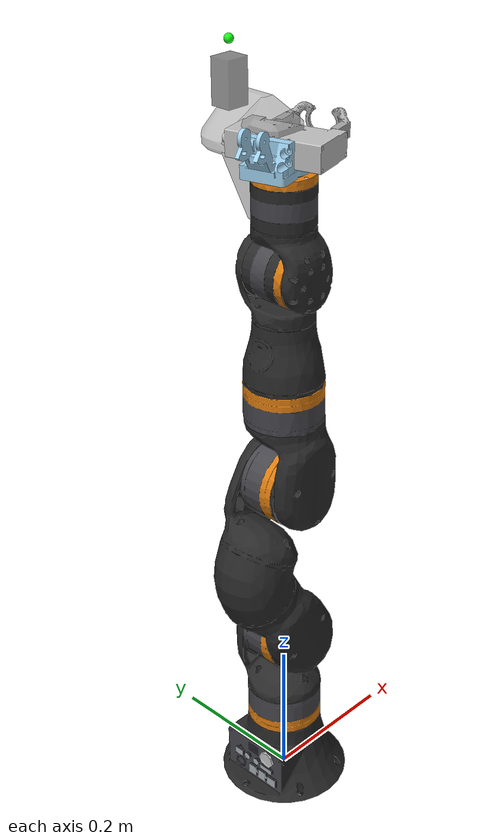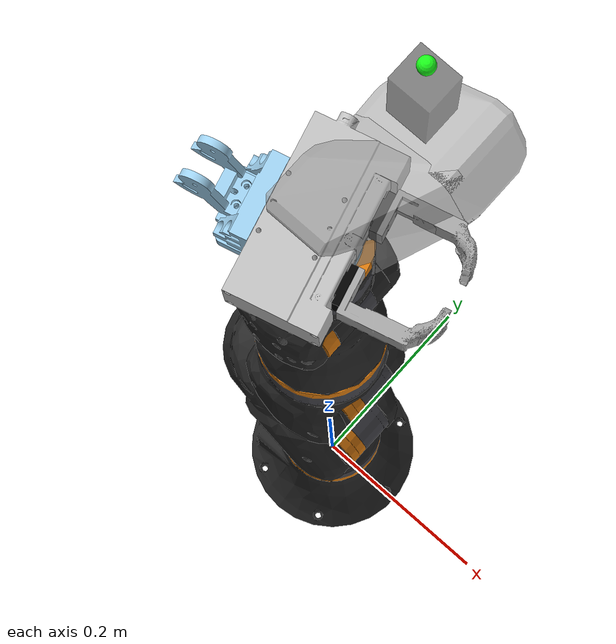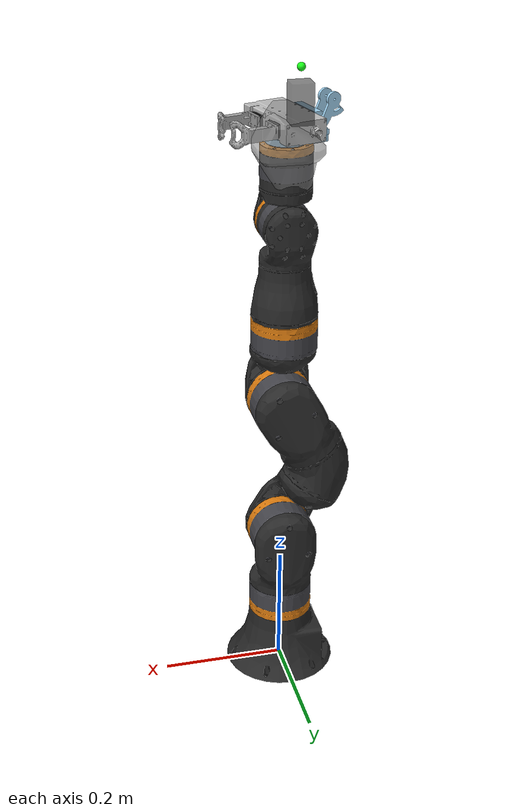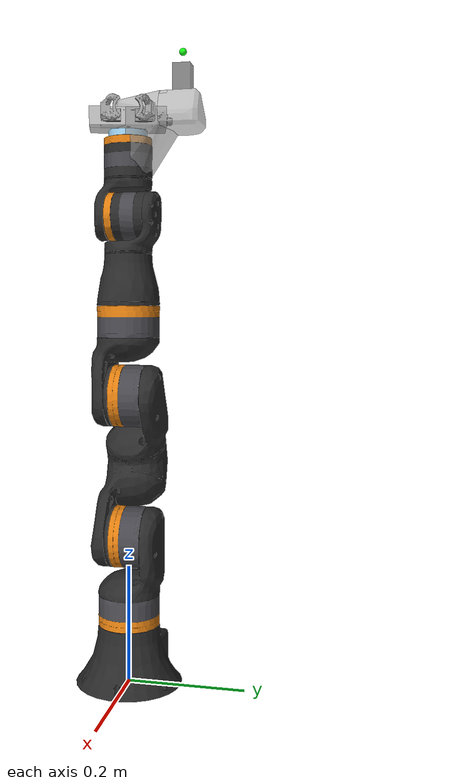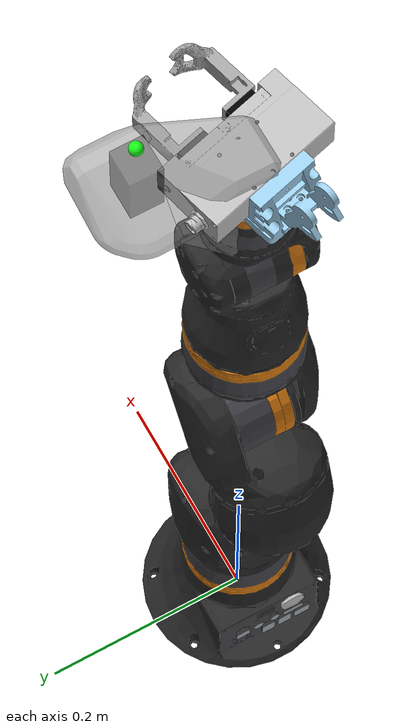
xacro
<?xml version="1.0"?>
<robot xmlns:xacro="http://www.ros.org/wiki/xacro" name="igus_rebel_with_xeg32">
    <xacro:arg name="initial_positions_file" default="initial_positions.yaml" />

    <!-- Import igus_rebel_with_xeg32 urdf file -->
    <xacro:include filename="$(find igus_rebel_description)/urdf/igus_rebel_xeg32_wrapper.urdf.xacro" />

    <!-- Import control_xacro -->
    <xacro:include filename="igus_rebel_with_xeg32.ros2_control.xacro" />

    <xacro:igus_rebel_with_xeg32_ros2_control name="FakeSystem" initial_positions_file="$(arg initial_positions_file)"/>

</robot>

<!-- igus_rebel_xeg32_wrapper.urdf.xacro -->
<robot xmlns:xacro="http://www.ros.org/wiki/xacro"
       name="igus_rebel_with_xeg32">

  <!-- Keep the ReBeL arm hardware configuration independent from the gripper. -->
  <xacro:arg name="hardware_protocol" default="rebel"/>
  <!-- CRI controller address: 192.168.3.11 = wired LAN (default), 192.168.50.133 = Wi-Fi. -->
  <xacro:arg name="robot_ip" default="192.168.3.11"/>
  <!-- CRI MoveJoint velocity cap [%] (driver default 25, hard cap 100); raise only for supervised tests. -->
  <xacro:arg name="move_joint_max_velocity_percent" default="25"/>
  <xacro:arg name="jog_velocity_scale" default="1.65"/>
  <xacro:arg name="cart_jog_percent_per_mps" default="200.0"/>
  <xacro:arg name="cart_jog_percent_per_radps" default="100.0"/>
  <xacro:arg name="cart_jog_max_percent" default="10.0"/>
  <xacro:arg name="cart_jog_allow_rotation" default="false"/>
  <xacro:arg name="cart_jog_signs" default="1,1,1,1,1,1"/>
  <xacro:arg name="cart_jog_timeout_s" default="0.15"/>
  <xacro:arg name="cart_jog_idle_exit_s" default="10.0"/>
  <xacro:arg name="cart_jog_base_frame" default="base_link"/>
  <!-- Direct joint jog (CRI route, robot stays in MotionTypeJoint); entered by the ~/joint_jog_enable service. -->
  <xacro:arg name="joint_jog_max_percent" default="10.0"/>
  <xacro:arg name="joint_jog_timeout_s" default="0.15"/>
  <xacro:arg name="joint_jog_idle_exit_s" default="10.0"/>
  <!-- CRI TCP port of the controller (3920); only changed for the loopback fake robot. -->
  <xacro:arg name="robot_port" default="3920"/>
  <xacro:arg name="include_ros2_control" default="true"/>
  <xacro:arg name="attach_xeg32" default="true"/>

  <!-- Retained rough gripper mount; not used to define the calibrated TCP. -->
  <xacro:arg name="xeg32_mount_xyz" default="0 0 0.052"/>
  <xacro:arg name="xeg32_mount_rpy" default="0 0 0.261799"/>

  <xacro:include filename="$(find igus_rebel_description)/urdf/igus_rebel2.urdf"/>
  <xacro:include filename="$(find igus_rebel_description)/urdf/igus_rebel2.control.xacro"/>
  <xacro:include filename="$(find igus_rebel_description)/urdf/xeg32_gripper.urdf.xacro"/>

  <xacro:if value="$(arg include_ros2_control)">
    <xacro:igus_rebel_control
      arm_id="rebel_arm"
      hardware_protocol="$(arg hardware_protocol)"
      robot_ip="$(arg robot_ip)"
      robot_port="$(arg robot_port)"
      jog_velocity_scale="$(arg jog_velocity_scale)"
      cart_jog_percent_per_mps="$(arg cart_jog_percent_per_mps)"
      cart_jog_percent_per_radps="$(arg cart_jog_percent_per_radps)"
      cart_jog_max_percent="$(arg cart_jog_max_percent)"
      cart_jog_allow_rotation="$(arg cart_jog_allow_rotation)"
      cart_jog_signs="$(arg cart_jog_signs)"
      cart_jog_timeout_s="$(arg cart_jog_timeout_s)"
      cart_jog_idle_exit_s="$(arg cart_jog_idle_exit_s)"
      cart_jog_base_frame="$(arg cart_jog_base_frame)"
      joint_jog_max_percent="$(arg joint_jog_max_percent)"
      joint_jog_timeout_s="$(arg joint_jog_timeout_s)"
      joint_jog_idle_exit_s="$(arg joint_jog_idle_exit_s)"
      move_joint_max_velocity_percent="$(arg move_joint_max_velocity_percent)"/>
  </xacro:if>

  <!-- Same world attachment used by igus_rebel_robot2.urdf.xacro. -->
  <link name="world"/>
  <joint name="world_joint" type="fixed">
    <parent link="world"/>
    <child link="base_link"/>
    <origin xyz="0 0 0" rpy="0 0 0"/>
  </joint>

  <xacro:if value="$(arg attach_xeg32)">
    <xacro:xeg32_gripper
      parent_link="link6"
      prefix="xeg32_"
      flange_xyz="$(arg xeg32_mount_xyz)"
      flange_rpy="$(arg xeg32_mount_rpy)"/>
  </xacro:if>
  <!-- Calibrated frames remain available even when gripper visuals are omitted. -->
  <link name="igus_tool0"/>
  <joint name="link6_to_igus_tool0" type="fixed">
    <parent link="link6"/>
    <child link="igus_tool0"/>
    <origin xyz="0 0 0.0527" rpy="0 0 3.141592653589793"/>
  </joint>
  <link name="xeg32_tool_tip">
    <visual>
      <geometry><sphere radius="0.006"/></geometry>
      <material name="xeg32_tool_tip_marker"><color rgba="0.1 1 0.1 1"/></material>
    </visual>
  </link>
  <!-- touch-corrected 2026-09-24c: XY-only safety fix (tip -0.7/+4.6mm tool from CENTER residual); Z held at +15mm fix (0.130699) pending stale-model check -->
  <joint name="igus_tool0_to_xeg32_tool_tip" type="fixed">
    <parent link="igus_tool0"/>
    <child link="xeg32_tool_tip"/>
    <origin xyz="0.005937 0.094121 0.130699" rpy="0 0 0"/>
  </joint>

  <xacro:if value="$(arg attach_xeg32)">
    <link name="xeg32_knife_handpiece">
      <visual>
        <geometry><mesh filename="package://igus_rebel_description/meshes/xeg32_collision/knife_handpiece.stl"/></geometry>
        <material name="xeg32_knife_handpiece_material"><color rgba="0.2 0.2 0.2 0.6"/></material>
      </visual>
      <collision>
        <geometry><mesh filename="package://igus_rebel_description/meshes/xeg32_collision/knife_handpiece.stl"/></geometry>
      </collision>
    </link>
    <joint name="igus_tool0_to_xeg32_knife_handpiece" type="fixed">
      <parent link="igus_tool0"/>
      <child link="xeg32_knife_handpiece"/>
      <origin xyz="0 0 0" rpy="0 0 0"/>
    </joint>

    <link name="xeg32_knife_holder">
      <visual>
        <geometry><mesh filename="package://igus_rebel_description/meshes/xeg32_collision/knife_holder_ring.stl"/></geometry>
        <material name="xeg32_knife_holder_material"><color rgba="0.6 0.6 0.6 0.6"/></material>
      </visual>
      <collision>
        <geometry><mesh filename="package://igus_rebel_description/meshes/xeg32_collision/knife_holder_ring.stl"/></geometry>
      </collision>
      <visual>
        <geometry><mesh filename="package://igus_rebel_description/meshes/xeg32_collision/knife_holder_body.stl"/></geometry>
        <material name="xeg32_knife_holder_material"/>
      </visual>
      <collision>
        <geometry><mesh filename="package://igus_rebel_description/meshes/xeg32_collision/knife_holder_body.stl"/></geometry>
      </collision>
    </link>
    <joint name="igus_tool0_to_xeg32_knife_holder" type="fixed">
      <parent link="igus_tool0"/>
      <child link="xeg32_knife_holder"/>
      <origin xyz="0 0 0" rpy="0 0 0"/>
    </joint>
    <!-- Wrist camera removed 2026-09-28: it protruded past the blade tip along the knife
         axis and hit the carton; it is uninstalled until the combined knife/camera holder
         is redesigned. -->
  </xacro:if>
</robot>

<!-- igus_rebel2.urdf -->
<robot
  name="igus_rebel">
  <link
    name="base_link">
    <inertial>
      <origin
        xyz="-0.0011101 -0.00059494 0.040917"
        rpy="0 0 0" />
      <mass
        value="4.2944" />
      <inertia
        ixx="0.098117"
        ixy="4.4465E-07"
        ixz="3.3605E-05"
        iyy="0.086593"
        iyz="-1.8837E-06"
        izz="0.12838" />
    </inertial>
    <visual>
      <origin
        xyz="0 0 0"
        rpy="0 0 0" />
      <geometry>
        <mesh
          filename="package://igus_rebel_description/meshes/rebel_d00617809/base_link.dae" />
      </geometry>
    </visual>
    <collision>
      <origin
        xyz="0 0 0.05"
        rpy="0 0 0" />
      <geometry>
        <cylinder radius="0.09" length="0.1"/>
      </geometry>
    </collision>
  </link>
  <link
    name="motor1">
    <inertial>
      <origin
        xyz="0.00015243 0.00010812 -0.014668"
        rpy="0 0 0" />
      <mass
        value="2" />
      <inertia
        ixx="0.024041"
        ixy="8.3398E-08"
        ixz="-7.2533E-07"
        iyy="0.024081"
        iyz="-6.2967E-07"
        izz="0.037427" />
    </inertial>
    <visual>
      <origin
        xyz="0 0 0"
        rpy="0 0 0" />
      <geometry>
        <mesh
          filename="package://igus_rebel_description/meshes/rebel_d00617809/motor1.dae" />
      </geometry>
    </visual>
    <collision>
      <origin
        xyz="0 0 -0.0125"
        rpy="0 0 0" />
      <geometry>
        <cylinder radius="0.05" length="0.065"/>
      </geometry>
    </collision>
  </link>
  <joint
    name="J_motor1"
    type="fixed">
    <origin
      xyz="0 0 0.1462"
      rpy="0 0 3.1416" />
    <parent
      link="base_link" />
    <child
      link="motor1" />
    <axis
      xyz="0 0 0" />
  </joint>
  <link
    name="link1">
    <inertial>
      <origin
        xyz="2.5064E-06 -0.031151 0.06301"
        rpy="0 0 0" />
      <mass
        value="1.9246" />
      <inertia
        ixx="0.046865"
        ixy="-3.7969E-09"
        ixz="5.1665E-09"
        iyy="0.04904"
        iyz="0.00010721"
        izz="0.030611" />
    </inertial>
    <visual>
      <origin
        xyz="0 0 0"
        rpy="0 0 0" />
      <geometry>
        <mesh
          filename="package://igus_rebel_description/meshes/rebel_d00617809/link1.dae" />
      </geometry>
    </visual>
    <collision>
      <origin
        xyz="0 -0.045 0.08"
        rpy="0 0 0" />
      <geometry>
        <box size="0.1 0.03 0.1"/>
      </geometry>
    </collision>
  </link>
  <joint
    name="joint1"
    type="revolute">
    <origin
      xyz="0 0 0"
      rpy="0 0 0" />
    <parent
      link="motor1" />
    <child
      link="link1" />
    <axis
      xyz="0 0 1" />
    <limit
      lower="-3.106686"
      upper="3.106686"
      effort="330"
      velocity="0.785" />
    <dynamics
      damping="0.0"
      friction="0.0" />
  </joint>
  <link
    name="motor2">
    <inertial>
      <origin
        xyz="0.00015243 0.014668 0.00010812"
        rpy="0 0 0" />
      <mass
        value="2" />
      <inertia
        ixx="0.024041"
        ixy="7.2533E-07"
        ixz="8.3398E-08"
        iyy="0.037427"
        iyz="6.2967E-07"
        izz="0.024081" />
    </inertial>
    <visual>
      <origin
        xyz="0 0 0"
        rpy="0 0 0" />
      <geometry>
        <mesh
          filename="package://igus_rebel_description/meshes/rebel_d00617809/motor2.dae" />
      </geometry>
    </visual>
    <collision>
      <origin
        xyz="0 0.0125 0"
        rpy="1.57079 0 0" />
      <geometry>
        <cylinder radius="0.05" length="0.065"/>
      </geometry>
    </collision>
  </link>
  <joint
    name="J_motor2"
    type="fixed">
    <origin
      xyz="0 -0.0225000000000001 0.106"
      rpy="0 0 0" />
    <parent
      link="link1" />
    <child
      link="motor2" />
    <axis
      xyz="0 0 0" />
  </joint>
  <link
    name="link2">
    <inertial>
      <origin
        xyz="0.023424 0.025337 0.10782"
        rpy="0 0 0" />
      <mass
        value="5.689" />
      <inertia
        ixx="0.1162"
        ixy="-2.0164E-11"
        ixz="-0.00018569"
        iyy="0.10155"
        iyz="5.9595E-10"
        izz="0.08965" />
    </inertial>
    <visual>
      <origin
        xyz="0 0 0"
        rpy="0 0 0" />
      <geometry>
        <mesh
          filename="package://igus_rebel_description/meshes/rebel_d00617809/link2.dae" />
      </geometry>
    </visual>
    <collision>
      <origin
        xyz="0.05 -0.025 0.12"
        rpy="0 0 0" />
      <geometry>
        <cylinder radius="0.06" length="0.18"/>
      </geometry>
    </collision>
  </link>
  <joint
    name="joint2"
    type="revolute">
    <origin
      xyz="0 0.049 0"
      rpy="0 0 0" />
    <parent
      link="motor2" />
    <child
      link="link2" />
    <axis
      xyz="0 -1 0" />
    <limit
      lower="-1.378810"
      upper="2.426008"
      effort="330"
      velocity="0.785" />
    <dynamics
      damping="0.0"
      friction="0.0" />
  </joint>
  <link
    name="motor3">
    <inertial>
      <origin
        xyz="0.00015243 0.014668 0.00010812"
        rpy="0 0 0" />
      <mass
        value="2.0785" />
      <inertia
        ixx="0.024041"
        ixy="7.2533E-07"
        ixz="8.3398E-08"
        iyy="0.037427"
        iyz="6.2967E-07"
        izz="0.024081" />
    </inertial>
    <visual>
      <origin
        xyz="0 0 0"
        rpy="0 0 0" />
      <geometry>
        <mesh
          filename="package://igus_rebel_description/meshes/rebel_d00617809/motor3.dae" />
      </geometry>
    </visual>
    <collision>
      <origin
        xyz="0 0.0125 0"
        rpy="1.57079 0 0" />
      <geometry>
        <cylinder radius="0.05" length="0.065"/>
      </geometry>
    </collision>
  </link>
  <joint
    name="J_motor3"
    type="fixed">
    <origin
      xyz="0 -0.049 0.24152"
      rpy="0 0 0" />
    <parent
      link="link2" />
    <child
      link="motor3" />
    <axis
      xyz="0 0 0" />
  </joint>
  <link
    name="link3">
    <inertial>
      <origin
        xyz="1.8683E-06 0.030601 0.032537"
        rpy="0 0 0" />
      <mass
        value="2.5429" />
      <inertia
        ixx="0.051458"
        ixy="3.7774E-09"
        ixz="-4.5694E-09"
        iyy="0.057983"
        iyz="0.00010721"
        izz="0.035205" />
    </inertial>
    <visual>
      <origin
        xyz="0 0 0"
        rpy="0 0 0" />
      <geometry>
        <mesh
          filename="package://igus_rebel_description/meshes/rebel_d00617809/link3.dae" />
      </geometry>
    </visual>
    <collision>
      <origin
        xyz="0 0.045 0.03"
        rpy="0 0 0" />
      <geometry>
        <box size="0.1 0.03 0.1"/>
      </geometry>
    </collision>
  </link>
  <joint
    name="joint3"
    type="revolute">
    <origin
      xyz="0 0.0225 0"
      rpy="0 0 0" />
    <parent
      link="motor3" />
    <child
      link="link3" />
    <axis
      xyz="0 -1 0" />
    <limit
      lower="-1.378810"
      upper="2.426008"
      effort="330"
      velocity="0.785" />
    <dynamics
      damping="0.0"
      friction="0.0" />
  </joint>
  <link
    name="motor4">
    <inertial>
      <origin
        xyz="0.00015243 -0.00010812 0.014668"
        rpy="0 0 0" />
      <mass
        value="2.0785" />
      <inertia
        ixx="0.024041"
        ixy="-8.3398E-08"
        ixz="7.2533E-07"
        iyy="0.024081"
        iyz="-6.2967E-07"
        izz="0.037427" />
    </inertial>
    <visual>
      <origin
        xyz="0.0013449814287804 0 -0.0005195"
        rpy="0 0 0" />
      <geometry>
        <mesh
          filename="package://igus_rebel_description/meshes/rebel_d00617809/motor4.dae" />
      </geometry>
    </visual>
    <collision>
      <origin
        xyz="0 0 0.0125"
        rpy="0 0 0" />
      <geometry>
        <cylinder radius="0.05" length="0.065"/>
      </geometry>
    </collision>
  </link>
  <joint
    name="J_motor4"
    type="fixed">
    <origin
      xyz="0.0013449814287804 0 0.105479407401356"
      rpy="0 0 0" />
    <parent
      link="link3" />
    <child
      link="motor4" />
    <axis
      xyz="0 0 0" />
  </joint>
  <link
    name="link4">
    <inertial>
      <origin
        xyz="-0.0070458 -0.00089773 0.05185"
        rpy="0 0 0" />
      <mass
        value="2.2059" />
      <inertia
        ixx="0.02402"
        ixy="1.096E-07"
        ixz="2.3983E-05"
        iyy="0.025662"
        iyz="-1.1343E-06"
        izz="0.030673" />
    </inertial>
    <visual>
      <origin
        xyz="0.0013449814287804 0 -0.0005195"
        rpy="0 0 0" />
      <geometry>
        <mesh
          filename="package://igus_rebel_description/meshes/rebel_d00617809/link4.dae" />
      </geometry>
    </visual>
    <collision>
      <origin
        xyz="0 0 0.044"
        rpy="0 0 0" />
      <geometry>
        <cylinder radius="0.05" length="0.1"/>
      </geometry>
    </collision>
  </link>
  <joint
    name="joint4"
    type="revolute">
    <origin
      xyz="0 0 0.052"
      rpy="0 0 0" />
    <parent
      link="motor4" />
    <child
      link="link4" />
    <axis
      xyz="0 0 1" />
    <limit
      lower="-3.106686"
      upper="3.106686"
      effort="330"
      velocity="0.785" />
    <dynamics
      damping="0.0"
      friction="0.0" />
  </joint>
  <link
    name="motor5">
    <inertial>
      <origin
        xyz="3.9518E-05 0.02054 -0.00015792"
        rpy="0 0 0" />
      <mass
        value="1.3011" />
      <inertia
        ixx="0.010922"
        ixy="3.1358E-08"
        ixz="1.683E-08"
        iyy="0.014448"
        iyz="-3.8659E-08"
        izz="0.010868" />
    </inertial>
    <visual>
      <origin
        xyz="0.0013449814287804 0 -0.0005195"
        rpy="0 0 0" />
      <geometry>
        <mesh
          filename="package://igus_rebel_description/meshes/rebel_d00617809/motor5.dae" />
      </geometry>
    </visual>
    <collision>
      <origin
        xyz="0 0.0125 0"
        rpy="1.57079 0 0" />
      <geometry>
        <cylinder radius="0.04" length="0.065"/>
      </geometry>
    </collision>
  </link>
  <joint
    name="J_motor5"
    type="fixed">
    <origin
      xyz="0 -0.0182 0.142"
      rpy="0 0 0" />
    <parent
      link="link4" />
    <child
      link="motor5" />
    <axis
      xyz="0 0 0" />
  </joint>
  <link
    name="link5">
    <inertial>
      <origin
        xyz="7.5874E-05 0.022847 0.026585"
        rpy="0 0 0" />
      <mass
        value="0.70922" />
      <inertia
        ixx="0.0091752"
        ixy="-5.1443E-08"
        ixz="-7.751E-09"
        iyy="0.0086093"
        iyz="2.4553E-05"
        izz="0.0079966" />
    </inertial>
    <visual>
      <origin
        xyz="0.0013449814287804 0 -0.0005195"
        rpy="0 0 0" />
      <geometry>
        <mesh
          filename="package://igus_rebel_description/meshes/rebel_d00617809/link5.dae" />
      </geometry>
    </visual>
    <collision>
      <origin
        xyz="0 0 0"
        rpy="0 0 0" />
      <geometry>
        <mesh
          filename="package://igus_rebel_description/meshes/rebel_d00617809/collision/link5_hull.stl" />
      </geometry>
    </collision>
  </link>
  <joint
    name="joint5"
    type="revolute">
    <origin
      xyz="0 0.0182 0"
      rpy="0 0 0" />
    <parent
      link="motor5" />
    <child
      link="link5" />
    <axis
      xyz="0 -1 0" />
    <limit
      lower="-1.640609"
      upper="1.640609"
      effort="330"
      velocity="0.785" />
    <dynamics
      damping="0.0"
      friction="0.0" />
  </joint>
  <link
    name="link6">
    <inertial>
      <origin
        xyz="-0.00016088 -4.7449E-05 0.021219"
        rpy="0 0 0" />
      <mass
        value="1.2658" />
      <inertia
        ixx="0.010763"
        ixy="-2.2861E-07"
        ixz="-4.9144E-08"
        iyy="0.010792"
        iyz="-2.2502E-08"
        izz="0.014496" />
    </inertial>
    <visual>
      <origin
        xyz="0.0013449814287804 0 -0.0005195"
        rpy="0 0 0" />
      <geometry>
        <mesh
          filename="package://igus_rebel_description/meshes/rebel_d00617809/link6.dae" />
      </geometry>
    </visual>
    <collision>
      <origin
        xyz="0 0 0.0125"
        rpy="0 0 0" />
      <geometry>
        <cylinder radius="0.04" length="0.065"/>
      </geometry>
    </collision>
  </link>
  <joint
    name="joint6"
    type="revolute">
    <origin
      xyz="0 0 0.0768"
      rpy="0 0 0" />
    <parent
      link="link5" />
    <child
      link="link6" />
    <axis
      xyz="0 0 1" />
    <limit
      lower="-3.106686"
      upper="3.106686"
      effort="330"
      velocity="0.785" />
    <dynamics
      damping="0.0"
      friction="0.0" />
  </joint>
</robot>

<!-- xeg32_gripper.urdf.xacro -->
<robot xmlns:xacro="http://www.ros.org/wiki/xacro">
  <xacro:macro name="xeg32_gripper" params="parent_link prefix flange_xyz flange_rpy lock_joints:=true">
    <joint name="${prefix}mount_joint" type="fixed">
      <origin xyz="${flange_xyz}" rpy="${flange_rpy}" />
      <parent link="${parent_link}" />
      <child link="${prefix}base_link" />
    </joint>
    <link name="${prefix}base_link">
      <inertial>
        <origin xyz="-0.00167857 -0.000372897 0.0289976" rpy="0 0 0" />
        <mass value="0.263982" />
        <inertia ixx="0.000381266" ixy="1.06104e-06" ixz="5.938e-09" iyy="0.000106721" iyz="2.12e-10" izz="0.000442224" />
      </inertial>
      <visual>
        <origin xyz="0.049 -0 0.016" rpy="0 -0 -1.5708" />
        <geometry>
          <mesh filename="package://igus_rebel_description/meshes/xeg32/part_1.stl" />
        </geometry>
        <material name="${prefix}part_1_material">
          <color rgba="0.615686 0.811765 0.929412 1" />
        </material>
      </visual>
      <collision>
        <origin xyz="0.049 -0 0.016" rpy="0 -0 -1.5708" />
        <geometry>
          <mesh filename="package://igus_rebel_description/meshes/xeg32_collision/part_1.stl" />
        </geometry>
      </collision>
      <visual>
        <origin xyz="0.0065 -0 0.029" rpy="0 -0 -1.5708" />
        <geometry>
          <mesh filename="package://igus_rebel_description/meshes/xeg32/xeg_base.stl" />
        </geometry>
        <material name="${prefix}xeg_base_material">
          <color rgba="0.74902 0.74902 0.74902 1" />
        </material>
      </visual>
      <collision>
        <origin xyz="0.0065 -0 0.029" rpy="0 -0 -1.5708" />
        <geometry>
          <mesh filename="package://igus_rebel_description/meshes/xeg32_collision/xeg_base.stl" />
        </geometry>
      </collision>
      <visual>
        <origin xyz="0 0 0" rpy="0 0 -1.5708" />
        <geometry>
          <mesh filename="package://igus_rebel_description/meshes/xeg32/part_1__2.stl" />
        </geometry>
        <material name="${prefix}part_1_2_material">
          <color rgba="0.615686 0.811765 0.929412 1" />
        </material>
      </visual>
      <collision>
        <origin xyz="0 0 0" rpy="0 0 -1.5708" />
        <geometry>
          <mesh filename="package://igus_rebel_description/meshes/xeg32_collision/part_1__2.stl" />
        </geometry>
      </collision>
    </link>
    <link name="${prefix}left_carriage_link">
      <inertial>
        <origin xyz="-0 -0.00376142 -0.00801771" rpy="0 0 0" />
        <mass value="0.0236002" />
        <inertia ixx="1.41079e-06" ixy="0" ixz="0" iyy="2.03222e-06" iyz="-7.27e-10" izz="7.93624e-07" />
      </inertial>
      <visual>
        <origin xyz="0 0.005 -0.0135" rpy="-3.14159 -0 -0" />
        <geometry>
          <mesh filename="package://igus_rebel_description/meshes/xeg32/right_carriage.stl" />
        </geometry>
        <material name="${prefix}right_carriage_material">
          <color rgba="0 0 0 1" />
        </material>
      </visual>
      <collision>
        <origin xyz="0 0.005 -0.0135" rpy="-3.14159 -0 -0" />
        <geometry>
          <mesh filename="package://igus_rebel_description/meshes/xeg32_collision/right_carriage.stl" />
        </geometry>
      </collision>
      <visual>
        <origin xyz="-2.30037e-07 -0.004 -0.00315591" rpy="-1.5708 0 0" />
        <geometry>
          <mesh filename="package://igus_rebel_description/meshes/xeg32/part_1__3.stl" />
        </geometry>
        <material name="${prefix}part_1_3_material">
          <color rgba="0.647059 0.647059 0.647059 1" />
        </material>
      </visual>
      <collision>
        <origin xyz="-2.30037e-07 -0.004 -0.00315591" rpy="-1.5708 0 0" />
        <geometry>
          <mesh filename="package://igus_rebel_description/meshes/xeg32_collision/part_1__3.stl" />
        </geometry>
      </collision>
    </link>
    <link name="${prefix}right_carriage_link">
      <inertial>
        <origin xyz="-0 -0.00376142 -0.00801771" rpy="0 0 0" />
        <mass value="0.0236002" />
        <inertia ixx="1.41079e-06" ixy="-0" ixz="-0" iyy="2.03222e-06" iyz="-7.27e-10" izz="7.93624e-07" />
      </inertial>
      <visual>
        <origin xyz="-2.30037e-07 -0.004 -0.00315591" rpy="-1.5708 0 -0" />
        <geometry>
          <mesh filename="package://igus_rebel_description/meshes/xeg32/part_1__3.stl" />
        </geometry>
        <material name="${prefix}part_1_4_material">
          <color rgba="0.647059 0.647059 0.647059 1" />
        </material>
      </visual>
      <collision>
        <origin xyz="-2.30037e-07 -0.004 -0.00315591" rpy="-1.5708 0 -0" />
        <geometry>
          <mesh filename="package://igus_rebel_description/meshes/xeg32_collision/part_1__3.stl" />
        </geometry>
      </collision>
      <visual>
        <origin xyz="0 0.005 -0.0135" rpy="-3.14159 0 0" />
        <geometry>
          <mesh filename="package://igus_rebel_description/meshes/xeg32/right_carriage.stl" />
        </geometry>
        <material name="${prefix}right_carriage_2_material">
          <color rgba="0 0 0 1" />
        </material>
      </visual>
      <collision>
        <origin xyz="0 0.005 -0.0135" rpy="-3.14159 0 0" />
        <geometry>
          <mesh filename="package://igus_rebel_description/meshes/xeg32_collision/right_carriage.stl" />
        </geometry>
      </collision>
    </link>
    <xacro:if value="${lock_joints}">
      <joint name="${prefix}left_carriage_joint" type="fixed">
        <origin xyz="-0.0312 0.0334131 0.029" rpy="-1.5708 -1.5708 0" />
        <parent link="${prefix}base_link" />
        <child link="${prefix}left_carriage_link" />
      </joint>
      <joint name="${prefix}right_carriage_joint" type="fixed">
        <origin xyz="-0.0312 -0.0334131 0.029" rpy="1.5708 1.5708 0" />
        <parent link="${prefix}base_link" />
        <child link="${prefix}right_carriage_link" />
      </joint>
    </xacro:if>
    <xacro:unless value="${lock_joints}">
      <joint name="${prefix}left_carriage_joint" type="prismatic">
        <origin xyz="-0.0312 0.0334131 0.029" rpy="-1.5708 -1.5708 0" />
        <parent link="${prefix}base_link" />
        <child link="${prefix}left_carriage_link" />
        <axis xyz="0 0 1" />
        <limit effort="10" velocity="10" lower="-0.0116631" upper="0.00483688" />
      </joint>
      <joint name="${prefix}right_carriage_joint" type="prismatic">
        <origin xyz="-0.0312 -0.0334131 0.029" rpy="1.5708 1.5708 0" />
        <parent link="${prefix}base_link" />
        <child link="${prefix}right_carriage_link" />
        <axis xyz="0 0 1" />
        <limit effort="10" velocity="10" lower="-0.0116631" upper="0.00483688" />
        <mimic joint="${prefix}left_carriage_joint" multiplier="1.0" />
      </joint>
    </xacro:unless>
  </xacro:macro>
</robot>
